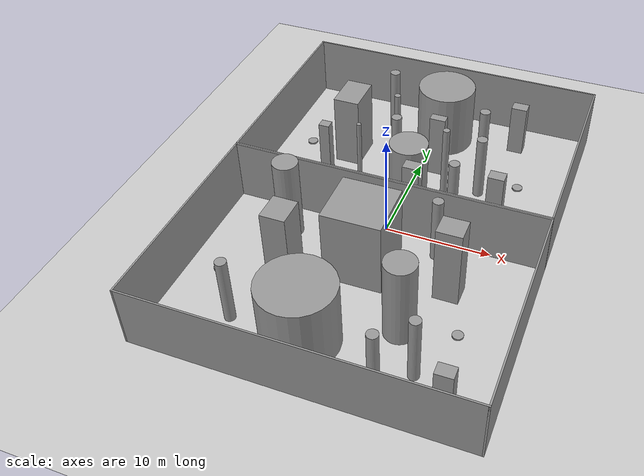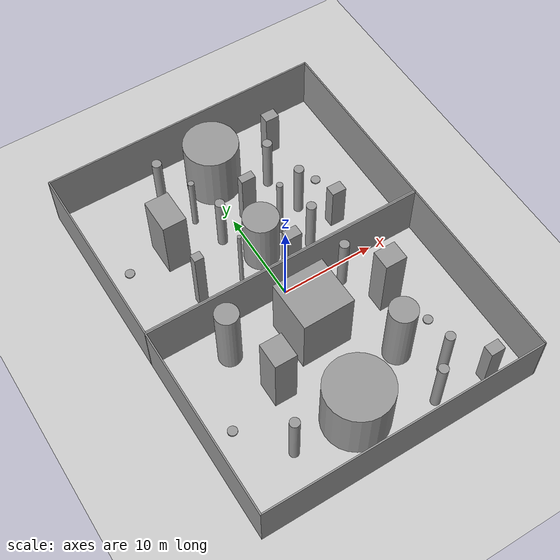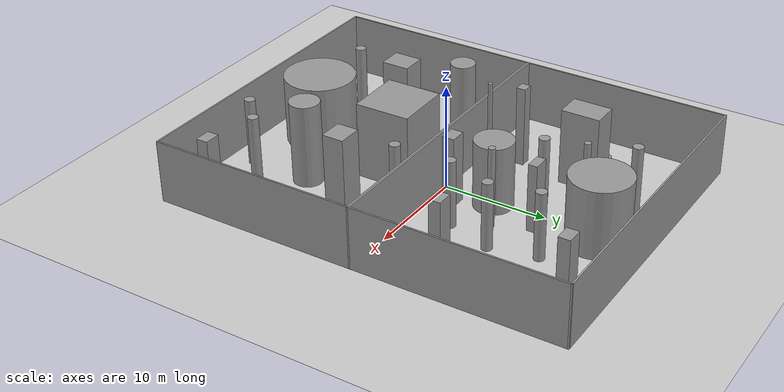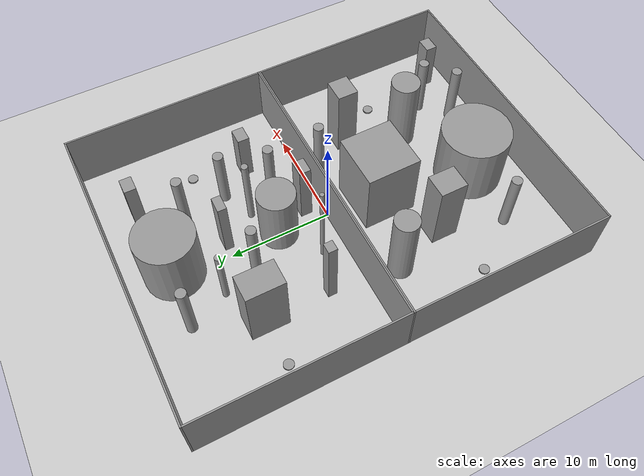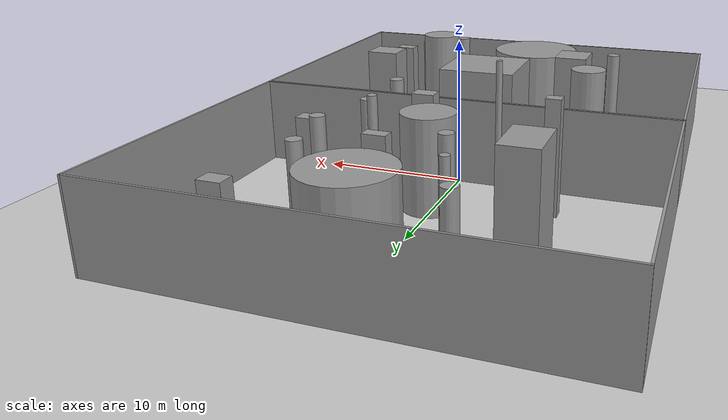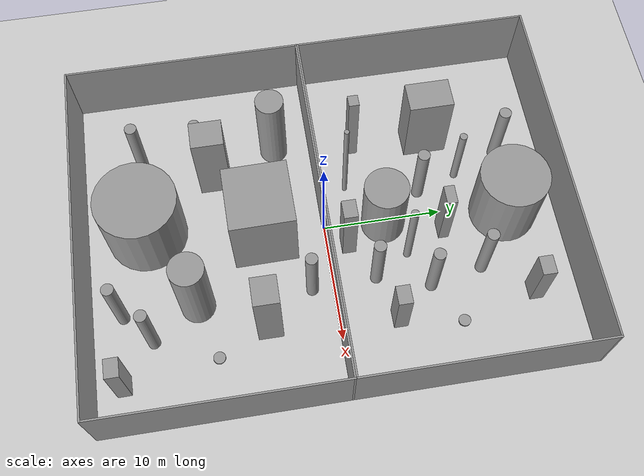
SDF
<sdf version="1.6">
 <world name="default">
  <light name="sun" type="directional">
   <pose>0 0 10 0 -0 0</pose>
   <diffuse>0.8 0.8 0.8 1</diffuse>
   <specular>0.2 0.2 0.2 1</specular>
   <attenuation>
    <range>1000</range>
    <constant>0.9</constant>
    <linear>0.01</linear>
    <quadratic>0.001</quadratic>
   </attenuation>
   <direction>-0.5 0.1 -0.9</direction>
  </light>
  <model name="ground_plane">
   <static>1</static>
   <link name="link">
    <collision name="collision">
     <geometry><plane><normal>0 0 1</normal><size>100 100</size></plane></geometry>
     <surface>
      <contact><collide_bitmask>65535</collide_bitmask></contact>
      <friction><ode><mu>100</mu><mu2>50</mu2></ode></friction>
     </surface>
    </collision>
    <visual name="visual">
     <cast_shadows>0</cast_shadows>
     <geometry><plane><normal>0 0 1</normal><size>100 100</size></plane></geometry>
     <material>
      <script><uri>file://media/materials/scripts/gazebo.material</uri><name>Gazebo/Grey</name></script>
     </material>
    </visual>
   </link>
  </model>
  <gravity>0 0 -9.8</gravity>
  <magnetic_field>6e-06 2.3e-05 -4.2e-05</magnetic_field>
  <atmosphere type="adiabatic"/>
  <physics name="default_physics" default="0" type="ode">
   <max_step_size>0.001</max_step_size>
   <real_time_factor>1</real_time_factor>
   <real_time_update_rate>1000</real_time_update_rate>
  </physics>
  <scene><ambient>0.4 0.4 0.4 1</ambient><background>0.7 0.7 0.7 1</background><shadows>1</shadows></scene>
  <spherical_coordinates>
   <surface_model>EARTH_WGS84</surface_model>
   <latitude_deg>0</latitude_deg>
   <longitude_deg>0</longitude_deg>
   <elevation>0</elevation>
   <heading_deg>0</heading_deg>
  </spherical_coordinates>
  <model name="simple_maze_2">
   <pose>0 10 0 0 -0 0</pose>
   <link name="Wall_10">
    <collision name="Wall_10_Collision">
     <geometry><box><size>30 0.15 6</size></box></geometry>
     <pose>0 0 3 0 -0 0</pose>
    </collision>
    <visual name="Wall_10_Visual">
     <pose>0 0 3 0 -0 0</pose>
     <geometry><box><size>30 0.15 6</size></box></geometry>
     <material>
      <script><uri>file://media/materials/scripts/gazebo.material</uri><name>Gazebo/Grey</name></script>
      <ambient>1 1 1 1</ambient>
     </material>
     <meta><layer>0</layer></meta>
    </visual>
    <pose>0 9.925 0 0 -0 3.14159</pose>
   </link>
   <link name="Wall_7">
    <collision name="Wall_7_Collision">
     <geometry><box><size>20 0.15 6</size></box></geometry>
     <pose>0 0 3 0 -0 0</pose>
    </collision>
    <visual name="Wall_7_Visual">
     <pose>0 0 3 0 -0 0</pose>
     <geometry><box><size>20 0.15 6</size></box></geometry>
     <material>
      <script><uri>file://media/materials/scripts/gazebo.material</uri><name>Gazebo/Grey</name></script>
      <ambient>1 1 1 1</ambient>
     </material>
     <meta><layer>0</layer></meta>
    </visual>
    <pose>-14.925 0 0 0 0 -1.5708</pose>
   </link>
   <link name="Wall_8">
    <collision name="Wall_8_Collision">
     <geometry><box><size>30 0.15 6</size></box></geometry>
     <pose>0 0 3 0 -0 0</pose>
    </collision>
    <visual name="Wall_8_Visual">
     <pose>0 0 3 0 -0 0</pose>
     <geometry><box><size>30 0.15 6</size></box></geometry>
     <material>
      <script><uri>file://media/materials/scripts/gazebo.material</uri><name>Gazebo/Grey</name></script>
      <ambient>1 1 1 1</ambient>
     </material>
     <meta><layer>0</layer></meta>
    </visual>
    <pose>0 -9.925 0 0 -0 0</pose>
   </link>
   <link name="Wall_9">
    <collision name="Wall_9_Collision">
     <geometry><box><size>20 0.15 6</size></box></geometry>
     <pose>0 0 3 0 -0 0</pose>
    </collision>
    <visual name="Wall_9_Visual">
     <pose>0 0 3 0 -0 0</pose>
     <geometry><box><size>20 0.15 6</size></box></geometry>
     <material>
      <script><uri>file://media/materials/scripts/gazebo.material</uri><name>Gazebo/Grey</name></script>
      <ambient>1 1 1 1</ambient>
     </material>
     <meta><layer>0</layer></meta>
    </visual>
    <pose>14.925 0 0 0 -0 1.5708</pose>
   </link>
   <static>1</static>
  </model>
  <model name="simple_maze_2_0">
   <pose>0 -10 0 0 -0 0</pose>
   <link name="Wall_10">
    <collision name="Wall_10_Collision">
     <geometry><box><size>30 0.15 6</size></box></geometry>
     <pose>0 0 3 0 -0 0</pose>
    </collision>
    <visual name="Wall_10_Visual">
     <pose>0 0 3 0 -0 0</pose>
     <geometry><box><size>30 0.15 6</size></box></geometry>
     <material>
      <script><uri>file://media/materials/scripts/gazebo.material</uri><name>Gazebo/Grey</name></script>
      <ambient>1 1 1 1</ambient>
     </material>
     <meta><layer>0</layer></meta>
    </visual>
    <pose>0 9.925 0 0 -0 3.14159</pose>
   </link>
   <link name="Wall_7">
    <collision name="Wall_7_Collision">
     <geometry><box><size>20 0.15 6</size></box></geometry>
     <pose>0 0 3 0 -0 0</pose>
    </collision>
    <visual name="Wall_7_Visual">
     <pose>0 0 3 0 -0 0</pose>
     <geometry><box><size>20 0.15 6</size></box></geometry>
     <material>
      <script><uri>file://media/materials/scripts/gazebo.material</uri><name>Gazebo/Grey</name></script>
      <ambient>1 1 1 1</ambient>
     </material>
     <meta><layer>0</layer></meta>
    </visual>
    <pose>-14.925 0 0 0 0 -1.5708</pose>
   </link>
   <link name="Wall_8">
    <collision name="Wall_8_Collision">
     <geometry><box><size>30 0.15 6</size></box></geometry>
     <pose>0 0 3 0 -0 0</pose>
    </collision>
    <visual name="Wall_8_Visual">
     <pose>0 0 3 0 -0 0</pose>
     <geometry><box><size>30 0.15 6</size></box></geometry>
     <material>
      <script><uri>file://media/materials/scripts/gazebo.material</uri><name>Gazebo/Grey</name></script>
      <ambient>1 1 1 1</ambient>
     </material>
     <meta><layer>0</layer></meta>
    </visual>
    <pose>0 -9.925 0 0 -0 0</pose>
   </link>
   <link name="Wall_9">
    <collision name="Wall_9_Collision">
     <geometry><box><size>20 0.15 6</size></box></geometry>
     <pose>0 0 3 0 -0 0</pose>
    </collision>
    <visual name="Wall_9_Visual">
     <pose>0 0 3 0 -0 0</pose>
     <geometry><box><size>20 0.15 6</size></box></geometry>
     <material>
      <script><uri>file://media/materials/scripts/gazebo.material</uri><name>Gazebo/Grey</name></script>
      <ambient>1 1 1 1</ambient>
     </material>
     <meta><layer>0</layer></meta>
    </visual>
    <pose>14.925 0 0 0 -0 1.5708</pose>
   </link>
   <static>1</static>
  </model>
  <model name="unit_cylinder_clone">
   <static>1</static>
   <pose>-3.32782 12.0786 3.26004 0 -0 0.299891</pose>
   <link name="link">
    <inertial>
     <mass>1</mass>
     <inertia><ixx>0.145833</ixx><ixy>0</ixy><ixz>0</ixz><iyy>0.145833</iyy><iyz>0</iyz><izz>0.125</izz></inertia>
    </inertial>
    <collision name="collision">
     <geometry><cylinder><radius>0.31049</radius><length>6.52009</length></cylinder></geometry>
    </collision>
    <visual name="visual">
     <geometry><cylinder><radius>0.31049</radius><length>6.52009</length></cylinder></geometry>
     <material>
      <script><name>Gazebo/Grey</name><uri>file://media/materials/scripts/gazebo.material</uri></script>
     </material>
    </visual>
   </link>
  </model>
  <model name="unit_cylinder_clone_0">
   <static>1</static>
   <pose>-2.14496 8.54668 3.26004 0 -0 0.030121</pose>
   <link name="link">
    <inertial>
     <mass>1</mass>
     <inertia><ixx>0.145833</ixx><ixy>0</ixy><ixz>0</ixz><iyy>0.145833</iyy><iyz>0</iyz><izz>0.125</izz></inertia>
    </inertial>
    <collision name="collision">
     <geometry><cylinder><radius>0.5</radius><length>6.52009</length></cylinder></geometry>
    </collision>
    <visual name="visual">
     <geometry><cylinder><radius>0.5</radius><length>6.52009</length></cylinder></geometry>
     <material>
      <script><name>Gazebo/Grey</name><uri>file://media/materials/scripts/gazebo.material</uri></script>
     </material>
    </visual>
   </link>
  </model>
  <model name="unit_cylinder_clone_1">
   <static>1</static>
   <pose>3.44586 6.55226 3.86386 0 -0 0.025598</pose>
   <link name="link">
    <inertial>
     <mass>1</mass>
     <inertia><ixx>0.145833</ixx><ixy>0</ixy><ixz>0</ixz><iyy>0.145833</iyy><iyz>0</iyz><izz>0.125</izz></inertia>
    </inertial>
    <collision name="collision">
     <geometry><cylinder><radius>0.323379</radius><length>7.72774</length></cylinder></geometry>
    </collision>
    <visual name="visual">
     <geometry><cylinder><radius>0.323379</radius><length>7.72774</length></cylinder></geometry>
     <material>
      <script><name>Gazebo/Grey</name><uri>file://media/materials/scripts/gazebo.material</uri></script>
     </material>
    </visual>
   </link>
  </model>
  <model name="unit_cylinder_clone_2">
   <static>1</static>
   <pose>5.59652 12.3928 3.26004 0 -0 0.030291</pose>
   <link name="link">
    <inertial>
     <mass>1</mass>
     <inertia><ixx>0.145833</ixx><ixy>0</ixy><ixz>0</ixz><iyy>0.145833</iyy><iyz>0</iyz><izz>0.125</izz></inertia>
    </inertial>
    <collision name="collision">
     <geometry><cylinder><radius>0.5</radius><length>6.52009</length></cylinder></geometry>
    </collision>
    <visual name="visual">
     <geometry><cylinder><radius>0.5</radius><length>6.52009</length></cylinder></geometry>
     <material>
      <script><name>Gazebo/Grey</name><uri>file://media/materials/scripts/gazebo.material</uri></script>
     </material>
    </visual>
   </link>
  </model>
  <model name="unit_cylinder_clone_3">
   <static>1</static>
   <pose>0.79567 15.3847 3.26004 1e-06 1e-06 0.017574</pose>
   <link name="link">
    <inertial>
     <mass>1</mass>
     <inertia><ixx>0.145833</ixx><ixy>0</ixy><ixz>0</ixz><iyy>0.145833</iyy><iyz>0</iyz><izz>0.125</izz></inertia>
    </inertial>
    <collision name="collision">
     <geometry><cylinder><radius>2.84855</radius><length>6.52009</length></cylinder></geometry>
    </collision>
    <visual name="visual">
     <geometry><cylinder><radius>2.84855</radius><length>6.52009</length></cylinder></geometry>
     <material>
      <script><name>Gazebo/Grey</name><uri>file://media/materials/scripts/gazebo.material</uri></script>
     </material>
    </visual>
   </link>
  </model>
  <model name="unit_cylinder_clone_4">
   <static>1</static>
   <pose>0.329572 5.02114 3.26004 0 0 -0.067834</pose>
   <link name="link">
    <inertial>
     <mass>1</mass>
     <inertia><ixx>0.145833</ixx><ixy>0</ixy><ixz>0</ixz><iyy>0.145833</iyy><iyz>0</iyz><izz>0.125</izz></inertia>
    </inertial>
    <collision name="collision">
     <geometry><cylinder><radius>1.83349</radius><length>6.52009</length></cylinder></geometry>
    </collision>
    <visual name="visual">
     <geometry><cylinder><radius>1.83349</radius><length>6.52009</length></cylinder></geometry>
     <material>
      <script><name>Gazebo/Grey</name><uri>file://media/materials/scripts/gazebo.material</uri></script>
     </material>
    </visual>
   </link>
  </model>
  <model name="unit_cylinder_clone_5">
   <static>1</static>
   <pose>-3.50131 2.37574 4.7416 0 0 -0.201719</pose>
   <link name="link">
    <inertial>
     <mass>1</mass>
     <inertia><ixx>0.145833</ixx><ixy>0</ixy><ixz>0</ixz><iyy>0.145833</iyy><iyz>0</iyz><izz>0.125</izz></inertia>
    </inertial>
    <collision name="collision">
     <geometry><cylinder><radius>0.203974</radius><length>9.48321</length></cylinder></geometry>
    </collision>
    <visual name="visual">
     <geometry><cylinder><radius>0.203974</radius><length>9.48321</length></cylinder></geometry>
     <material>
      <script><name>Gazebo/Grey</name><uri>file://media/materials/scripts/gazebo.material</uri></script>
     </material>
    </visual>
   </link>
  </model>
  <model name="unit_cylinder_clone_6">
   <static>1</static>
   <pose>5.17876 3.58424 3.26004 0 -0 0.030294</pose>
   <link name="link">
    <inertial>
     <mass>1</mass>
     <inertia><ixx>0.145833</ixx><ixy>0</ixy><ixz>0</ixz><iyy>0.145833</iyy><iyz>0</iyz><izz>0.125</izz></inertia>
    </inertial>
    <collision name="collision">
     <geometry><cylinder><radius>0.5</radius><length>6.52009</length></cylinder></geometry>
    </collision>
    <visual name="visual">
     <geometry><cylinder><radius>0.5</radius><length>6.52009</length></cylinder></geometry>
     <material>
      <script><name>Gazebo/Grey</name><uri>file://media/materials/scripts/gazebo.material</uri></script>
     </material>
    </visual>
   </link>
  </model>
  <model name="unit_cylinder_clone_7">
   <static>1</static>
   <pose>-5.0052 16.0017 3.26004 0 -0 0.030421</pose>
   <link name="link">
    <inertial>
     <mass>1</mass>
     <inertia><ixx>0.145833</ixx><ixy>0</ixy><ixz>0</ixz><iyy>0.145833</iyy><iyz>0</iyz><izz>0.125</izz></inertia>
    </inertial>
    <collision name="collision">
     <geometry><cylinder><radius>0.5</radius><length>6.52009</length></cylinder></geometry>
    </collision>
    <visual name="visual">
     <geometry><cylinder><radius>0.5</radius><length>6.52009</length></cylinder></geometry>
     <material>
      <script><name>Gazebo/Grey</name><uri>file://media/materials/scripts/gazebo.material</uri></script>
     </material>
    </visual>
   </link>
  </model>
  <model name="unit_cylinder_clone_8">
   <static>1</static>
   <pose>6.54888 7.96212 3.26004 0 -0 0.030444</pose>
   <link name="link">
    <inertial>
     <mass>1</mass>
     <inertia><ixx>0.145833</ixx><ixy>0</ixy><ixz>0</ixz><iyy>0.145833</iyy><iyz>0</iyz><izz>0.125</izz></inertia>
    </inertial>
    <collision name="collision">
     <geometry><cylinder><radius>0.5</radius><length>6.52009</length></cylinder></geometry>
    </collision>
    <visual name="visual">
     <geometry><cylinder><radius>0.5</radius><length>6.52009</length></cylinder></geometry>
     <material>
      <script><name>Gazebo/Grey</name><uri>file://media/materials/scripts/gazebo.material</uri></script>
     </material>
    </visual>
   </link>
  </model>
  <model name="unit_box_clone_clone">
   <static>1</static>
   <pose>8.2694 16.2641 2.64317 0 0 -0.002033</pose>
   <link name="link">
    <inertial>
     <mass>1</mass>
     <inertia>
      <ixx>0.166667</ixx>
      <ixy>0</ixy>
      <ixz>0</ixz>
      <iyy>0.166667</iyy>
      <iyz>0</iyz>
      <izz>0.166667</izz>
     </inertia>
    </inertial>
    <collision name="collision"><geometry><box><size>1.53847 1.1422 5.28633</size></box></geometry></collision>
    <visual name="visual">
     <geometry><box><size>1.53847 1.1422 5.28633</size></box></geometry>
     <material>
      <script><name>Gazebo/Grey</name><uri>file://media/materials/scripts/gazebo.material</uri></script>
     </material>
    </visual>
   </link>
  </model>
  <model name="unit_box_clone_clone_0">
   <static>1</static>
   <pose>8.9296 4.80053 2.64317 0 0 -0.001646</pose>
   <link name="link">
    <inertial>
     <mass>1</mass>
     <inertia>
      <ixx>0.166667</ixx>
      <ixy>0</ixy>
      <ixz>0</ixz>
      <iyy>0.166667</iyy>
      <iyz>0</iyz>
      <izz>0.166667</izz>
     </inertia>
    </inertial>
    <collision name="collision"><geometry><box><size>1.53847 1.1422 5.28633</size></box></geometry></collision>
    <visual name="visual">
     <geometry><box><size>1.53847 1.1422 5.28633</size></box></geometry>
     <material>
      <script><name>Gazebo/Grey</name><uri>file://media/materials/scripts/gazebo.material</uri></script>
     </material>
    </visual>
   </link>
  </model>
  <model name="unit_box_clone_clone_1">
   <static>1</static>
   <pose>1.67357 9.88585 3.25346 0 0 -0.006516</pose>
   <link name="link">
    <inertial>
     <mass>1</mass>
     <inertia>
      <ixx>0.166667</ixx>
      <ixy>0</ixy>
      <ixz>0</ixz>
      <iyy>0.166667</iyy>
      <iyz>0</iyz>
      <izz>0.166667</izz>
     </inertia>
    </inertial>
    <collision name="collision"><geometry><box><size>1.53847 0.857894 6.50692</size></box></geometry></collision>
    <visual name="visual">
     <geometry><box><size>1.53847 0.857894 6.50692</size></box></geometry>
     <material>
      <script><name>Gazebo/Grey</name><uri>file://media/materials/scripts/gazebo.material</uri></script>
     </material>
    </visual>
   </link>
  </model>
  <model name="unit_box_clone_clone_2">
   <static>1</static>
   <pose>1.80342 1.7637 3.38593 1e-06 -0 -0.000475</pose>
   <link name="link">
    <inertial>
     <mass>1</mass>
     <inertia>
      <ixx>0.166667</ixx>
      <ixy>0</ixy>
      <ixz>0</ixz>
      <iyy>0.166667</iyy>
      <iyz>0</iyz>
      <izz>0.166667</izz>
     </inertia>
    </inertial>
    <collision name="collision"><geometry><box><size>1.53847 1.1422 6.77185</size></box></geometry></collision>
    <visual name="visual">
     <geometry><box><size>1.53847 1.1422 6.77185</size></box></geometry>
     <material>
      <script><name>Gazebo/Grey</name><uri>file://media/materials/scripts/gazebo.material</uri></script>
     </material>
    </visual>
   </link>
  </model>
  <model name="unit_cylinder_0_clone">
   <static>1</static>
   <pose>-12 10 0.078637 -1e-06 -0 -0.386157</pose>
   <link name="link">
    <inertial>
     <mass>1</mass>
     <inertia><ixx>0.145833</ixx><ixy>0</ixy><ixz>0</ixz><iyy>0.145833</iyy><iyz>0</iyz><izz>0.125</izz></inertia>
    </inertial>
    <collision name="collision">
     <geometry><cylinder><radius>0.5</radius><length>0.157277</length></cylinder></geometry>
    </collision>
    <visual name="visual">
     <geometry><cylinder><radius>0.5</radius><length>0.157277</length></cylinder></geometry>
     <material>
      <script><name>Gazebo/Grey</name><uri>file://media/materials/scripts/gazebo.material</uri></script>
     </material>
    </visual>
   </link>
  </model>
  <model name="unit_box_clone_0_clone">
   <static>1</static>
   <pose>-0.282757 -5.16692 3.65803 -1e-06 1e-06 0.011419</pose>
   <link name="link">
    <inertial>
     <mass>1</mass>
     <inertia>
      <ixx>0.166667</ixx>
      <ixy>0</ixy>
      <ixz>0</ixz>
      <iyy>0.166667</iyy>
      <iyz>0</iyz>
      <izz>0.166667</izz>
     </inertia>
    </inertial>
    <collision name="collision"><geometry><box><size>5.41965 5.29106 7.31607</size></box></geometry></collision>
    <visual name="visual">
     <geometry><box><size>5.41965 5.29106 7.31607</size></box></geometry>
     <material>
      <script><name>Gazebo/Grey</name><uri>file://media/materials/scripts/gazebo.material</uri></script>
     </material>
    </visual>
   </link>
  </model>
  <model name="unit_cylinder_clone_5_clone">
   <static>1</static>
   <pose>-1.78092 -14.8463 3.26004 1e-06 -0 -0.000473</pose>
   <link name="link">
    <inertial>
     <mass>1</mass>
     <inertia><ixx>0.145833</ixx><ixy>0</ixy><ixz>0</ixz><iyy>0.145833</iyy><iyz>0</iyz><izz>0.125</izz></inertia>
    </inertial>
    <collision name="collision">
     <geometry><cylinder><radius>3.37558</radius><length>6.52009</length></cylinder></geometry>
    </collision>
    <visual name="visual">
     <geometry><cylinder><radius>3.37558</radius><length>6.52009</length></cylinder></geometry>
     <material>
      <script><name>Gazebo/Grey</name><uri>file://media/materials/scripts/gazebo.material</uri></script>
     </material>
    </visual>
   </link>
  </model>
  <model name="unit_cylinder_clone_4_clone">
   <static>1</static>
   <pose>5.37275 -11.231 4.0002 0 0 -0.14892</pose>
   <link name="link">
    <inertial>
     <mass>1</mass>
     <inertia><ixx>0.145833</ixx><ixy>0</ixy><ixz>0</ixz><iyy>0.145833</iyy><iyz>0</iyz><izz>0.125</izz></inertia>
    </inertial>
    <collision name="collision">
     <geometry><cylinder><radius>1.40828</radius><length>8.00041</length></cylinder></geometry>
    </collision>
    <visual name="visual">
     <geometry><cylinder><radius>1.40828</radius><length>8.00041</length></cylinder></geometry>
     <material>
      <script><name>Gazebo/Grey</name><uri>file://media/materials/scripts/gazebo.material</uri></script>
     </material>
    </visual>
   </link>
  </model>
  <model name="unit_box_clone_clone_1_clone_0">
   <static>1</static>
   <pose>7.83674 -5.67894 3.8407 -0 1e-06 -0.001721</pose>
   <link name="link">
    <inertial>
     <mass>1</mass>
     <inertia>
      <ixx>0.166667</ixx>
      <ixy>0</ixy>
      <ixz>0</ixz>
      <iyy>0.166667</iyy>
      <iyz>0</iyz>
      <izz>0.166667</izz>
     </inertia>
    </inertial>
    <collision name="collision"><geometry><box><size>2.3027 2.04657 7.6814</size></box></geometry></collision>
    <visual name="visual">
     <geometry><box><size>2.3027 2.04657 7.6814</size></box></geometry>
     <material>
      <script><name>Gazebo/Grey</name><uri>file://media/materials/scripts/gazebo.material</uri></script>
     </material>
    </visual>
   </link>
  </model>
  <model name="unit_cylinder_clone_8_clone_0">
   <static>1</static>
   <pose>7.9311 -15.0279 3.26004 0 -0 0.033094</pose>
   <link name="link">
    <inertial>
     <mass>1</mass>
     <inertia><ixx>0.145833</ixx><ixy>0</ixy><ixz>0</ixz><iyy>0.145833</iyy><iyz>0</iyz><izz>0.125</izz></inertia>
    </inertial>
    <collision name="collision">
     <geometry><cylinder><radius>0.5</radius><length>6.52009</length></cylinder></geometry>
    </collision>
    <visual name="visual">
     <geometry><cylinder><radius>0.5</radius><length>6.52009</length></cylinder></geometry>
     <material>
      <script><name>Gazebo/Grey</name><uri>file://media/materials/scripts/gazebo.material</uri></script>
     </material>
    </visual>
   </link>
  </model>
  <model name="unit_cylinder_clone_6_clone">
   <static>1</static>
   <pose>5.46785 -17.3324 3.26004 0 -0 0.033373</pose>
   <link name="link">
    <inertial>
     <mass>1</mass>
     <inertia><ixx>0.145833</ixx><ixy>0</ixy><ixz>0</ixz><iyy>0.145833</iyy><iyz>0</iyz><izz>0.125</izz></inertia>
    </inertial>
    <collision name="collision">
     <geometry><cylinder><radius>0.5</radius><length>6.52009</length></cylinder></geometry>
    </collision>
    <visual name="visual">
     <geometry><cylinder><radius>0.5</radius><length>6.52009</length></cylinder></geometry>
     <material>
      <script><name>Gazebo/Grey</name><uri>file://media/materials/scripts/gazebo.material</uri></script>
     </material>
    </visual>
   </link>
  </model>
  <model name="unit_box_clone_clone_2_clone">
   <static>1</static>
   <pose>11.1482 -17.6242 2.64317 0 -0 0.007704</pose>
   <link name="link">
    <inertial>
     <mass>1</mass>
     <inertia>
      <ixx>0.166667</ixx>
      <ixy>0</ixy>
      <ixz>0</ixz>
      <iyy>0.166667</iyy>
      <iyz>0</iyz>
      <izz>0.166667</izz>
     </inertia>
    </inertial>
    <collision name="collision"><geometry><box><size>1.53847 1.1422 5.28633</size></box></geometry></collision>
    <visual name="visual">
     <geometry><box><size>1.53847 1.1422 5.28633</size></box></geometry>
     <material>
      <script><name>Gazebo/Grey</name><uri>file://media/materials/scripts/gazebo.material</uri></script>
     </material>
    </visual>
   </link>
  </model>
  <model name="unit_cylinder_clone_0_clone_0">
   <static>1</static>
   <pose>-8.33734 -14.7206 3.26004 0 -0 0.033124</pose>
   <link name="link">
    <inertial>
     <mass>1</mass>
     <inertia><ixx>0.145833</ixx><ixy>0</ixy><ixz>0</ixz><iyy>0.145833</iyy><iyz>0</iyz><izz>0.125</izz></inertia>
    </inertial>
    <collision name="collision">
     <geometry><cylinder><radius>0.5</radius><length>6.52009</length></cylinder></geometry>
    </collision>
    <visual name="visual">
     <geometry><cylinder><radius>0.5</radius><length>6.52009</length></cylinder></geometry>
     <material>
      <script><name>Gazebo/Grey</name><uri>file://media/materials/scripts/gazebo.material</uri></script>
     </material>
    </visual>
   </link>
  </model>
  <model name="unit_cylinder_0_clone_0">
   <static>1</static>
   <pose>10 -10 0.078638 0 -0 4e-06</pose>
   <link name="link">
    <inertial>
     <mass>1</mass>
     <inertia><ixx>0.145833</ixx><ixy>0</ixy><ixz>0</ixz><iyy>0.145833</iyy><iyz>0</iyz><izz>0.125</izz></inertia>
    </inertial>
    <collision name="collision">
     <geometry><cylinder><radius>0.5</radius><length>0.157277</length></cylinder></geometry>
    </collision>
    <visual name="visual">
     <geometry><cylinder><radius>0.5</radius><length>0.157277</length></cylinder></geometry>
     <material>
      <script><name>Gazebo/Grey</name><uri>file://media/materials/scripts/gazebo.material</uri></script>
     </material>
    </visual>
   </link>
  </model>
  <model name="unit_cylinder_0_clone_0_clone">
   <static>1</static>
   <pose>-12 -10 0.078638 0 -0 4e-06</pose>
   <link name="link">
    <inertial>
     <mass>1</mass>
     <inertia><ixx>0.145833</ixx><ixy>0</ixy><ixz>0</ixz><iyy>0.145833</iyy><iyz>0</iyz><izz>0.125</izz></inertia>
    </inertial>
    <collision name="collision">
     <geometry><cylinder><radius>0.5</radius><length>0.157277</length></cylinder></geometry>
    </collision>
    <visual name="visual">
     <geometry><cylinder><radius>0.5</radius><length>0.157277</length></cylinder></geometry>
     <material>
      <script><name>Gazebo/Grey</name><uri>file://media/materials/scripts/gazebo.material</uri></script>
     </material>
    </visual>
   </link>
  </model>
  <model name="unit_cylinder_clone_8_clone_1">
   <static>1</static>
   <pose>5.40616 -1.80832 3.26004 0 -0 0.030351</pose>
   <link name="link">
    <inertial>
     <mass>1</mass>
     <inertia><ixx>0.145833</ixx><ixy>0</ixy><ixz>0</ixz><iyy>0.145833</iyy><iyz>0</iyz><izz>0.125</izz></inertia>
    </inertial>
    <collision name="collision">
     <geometry><cylinder><radius>0.5</radius><length>6.52009</length></cylinder></geometry>
    </collision>
    <visual name="visual">
     <geometry><cylinder><radius>0.5</radius><length>6.52009</length></cylinder></geometry>
     <material>
      <script><name>Gazebo/Grey</name><uri>file://media/materials/scripts/gazebo.material</uri></script>
     </material>
    </visual>
   </link>
  </model>
  <model name="unit_box">
   <static>1</static>
   <pose>-7.2502 9.96631 3.65483 2e-06 -0 0.00102</pose>
   <link name="link">
    <inertial>
     <mass>1</mass>
     <inertia>
      <ixx>0.166667</ixx>
      <ixy>0</ixy>
      <ixz>0</ixz>
      <iyy>0.166667</iyy>
      <iyz>0</iyz>
      <izz>0.166667</izz>
     </inertia>
    </inertial>
    <collision name="collision"><geometry><box><size>2.5057 3.66251 7.30966</size></box></geometry></collision>
    <visual name="visual">
     <geometry><box><size>2.5057 3.66251 7.30966</size></box></geometry>
     <material>
      <script><name>Gazebo/Grey</name><uri>file://media/materials/scripts/gazebo.material</uri></script>
     </material>
    </visual>
   </link>
  </model>
  <model name="unit_box_clone_clone_1_clone_1">
   <static>1</static>
   <pose>-7.37378 3.60658 3.88002 4e-06 -0 0.003524</pose>
   <link name="link">
    <inertial>
     <mass>1</mass>
     <inertia>
      <ixx>0.166667</ixx>
      <ixy>0</ixy>
      <ixz>0</ixz>
      <iyy>0.166667</iyy>
      <iyz>0</iyz>
      <izz>0.166667</izz>
     </inertia>
    </inertial>
    <collision name="collision"><geometry><box><size>0.988072 0.857894 7.76003</size></box></geometry></collision>
    <visual name="visual">
     <geometry><box><size>0.988072 0.857894 7.76003</size></box></geometry>
     <material>
      <script><name>Gazebo/Grey</name><uri>file://media/materials/scripts/gazebo.material</uri></script>
     </material>
    </visual>
   </link>
  </model>
  <model name="unit_cylinder_0_clone_clone">
   <static>1</static>
   <pose>10 10 0.078637 0 0 -0.386157</pose>
   <link name="link">
    <inertial>
     <mass>1</mass>
     <inertia><ixx>0.145833</ixx><ixy>0</ixy><ixz>0</ixz><iyy>0.145833</iyy><iyz>0</iyz><izz>0.125</izz></inertia>
    </inertial>
    <collision name="collision">
     <geometry><cylinder><radius>0.5</radius><length>0.157277</length></cylinder></geometry>
    </collision>
    <visual name="visual">
     <geometry><cylinder><radius>0.5</radius><length>0.157277</length></cylinder></geometry>
     <material>
      <script><name>Gazebo/Grey</name><uri>file://media/materials/scripts/gazebo.material</uri></script>
     </material>
    </visual>
   </link>
  </model>
  <model name="unit_box_clone_clone_1_clone_0_clone">
   <static>1</static>
   <pose>-6.17237 -8.61075 3.8407 -2e-06 -0 -0.001747</pose>
   <link name="link">
    <inertial>
     <mass>1</mass>
     <inertia>
      <ixx>0.166667</ixx>
      <ixy>0</ixy>
      <ixz>0</ixz>
      <iyy>0.166667</iyy>
      <iyz>0</iyz>
      <izz>0.166667</izz>
     </inertia>
    </inertial>
    <collision name="collision"><geometry><box><size>2.3027 2.65143 7.6814</size></box></geometry></collision>
    <visual name="visual">
     <geometry><box><size>2.3027 2.65143 7.6814</size></box></geometry>
     <material>
      <script><name>Gazebo/Grey</name><uri>file://media/materials/scripts/gazebo.material</uri></script>
     </material>
    </visual>
   </link>
  </model>
  <model name="unit_cylinder_clone_4_clone_clone">
   <static>1</static>
   <pose>-8.2212 -3.20967 4.00019 1e-06 1e-06 -0.149236</pose>
   <link name="link">
    <inertial>
     <mass>1</mass>
     <inertia><ixx>0.145833</ixx><ixy>0</ixy><ixz>0</ixz><iyy>0.145833</iyy><iyz>0</iyz><izz>0.125</izz></inertia>
    </inertial>
    <collision name="collision">
     <geometry><cylinder><radius>1.17555</radius><length>8.00041</length></cylinder></geometry>
    </collision>
    <visual name="visual">
     <geometry><cylinder><radius>1.17555</radius><length>8.00041</length></cylinder></geometry>
     <material>
      <script><name>Gazebo/Grey</name><uri>file://media/materials/scripts/gazebo.material</uri></script>
     </material>
    </visual>
   </link>
  </model>
 </world>
</sdf>
